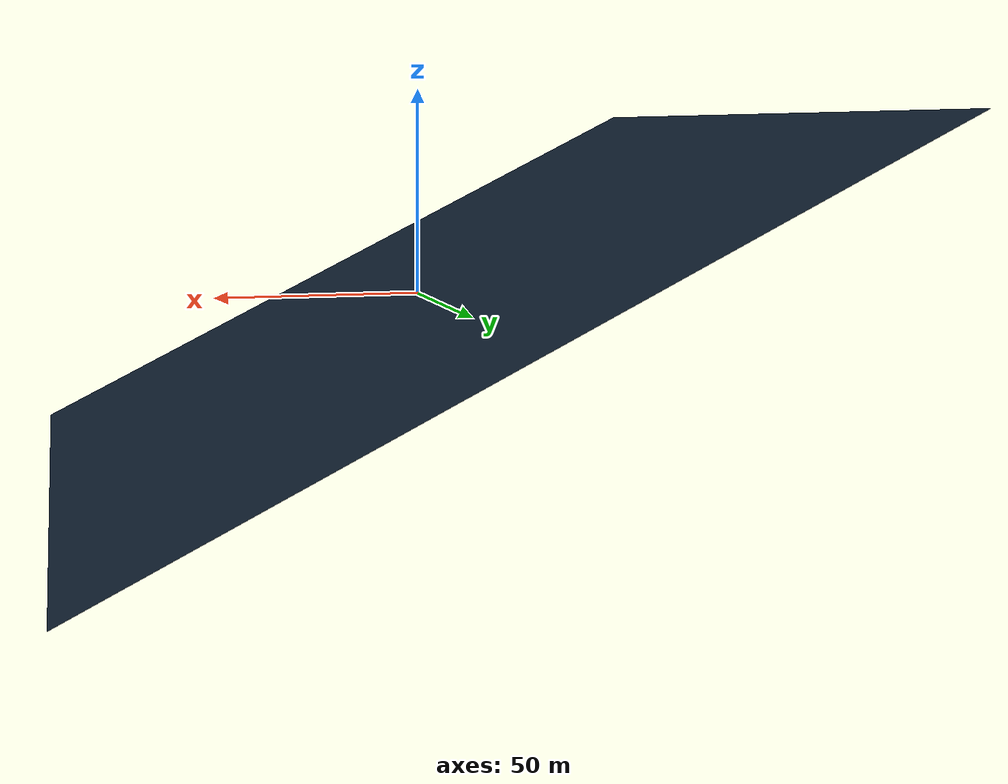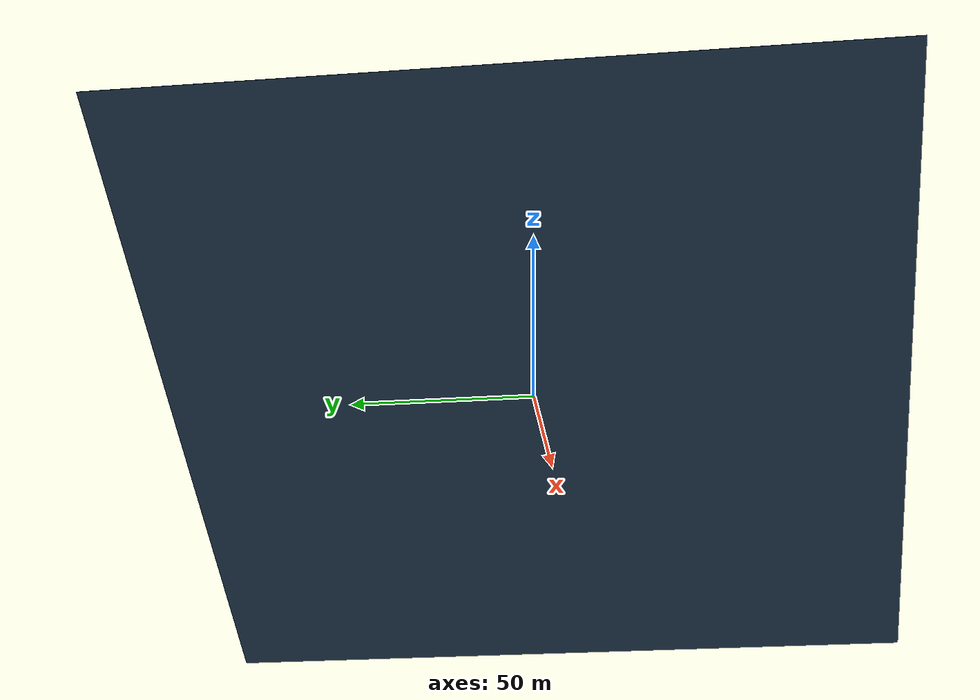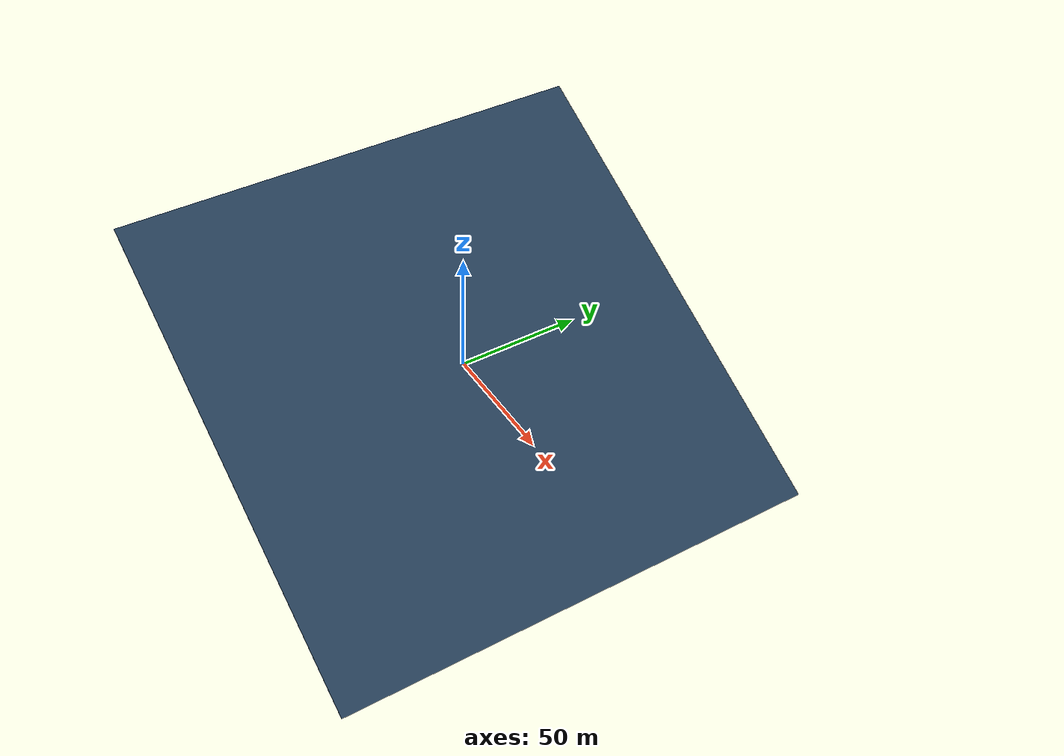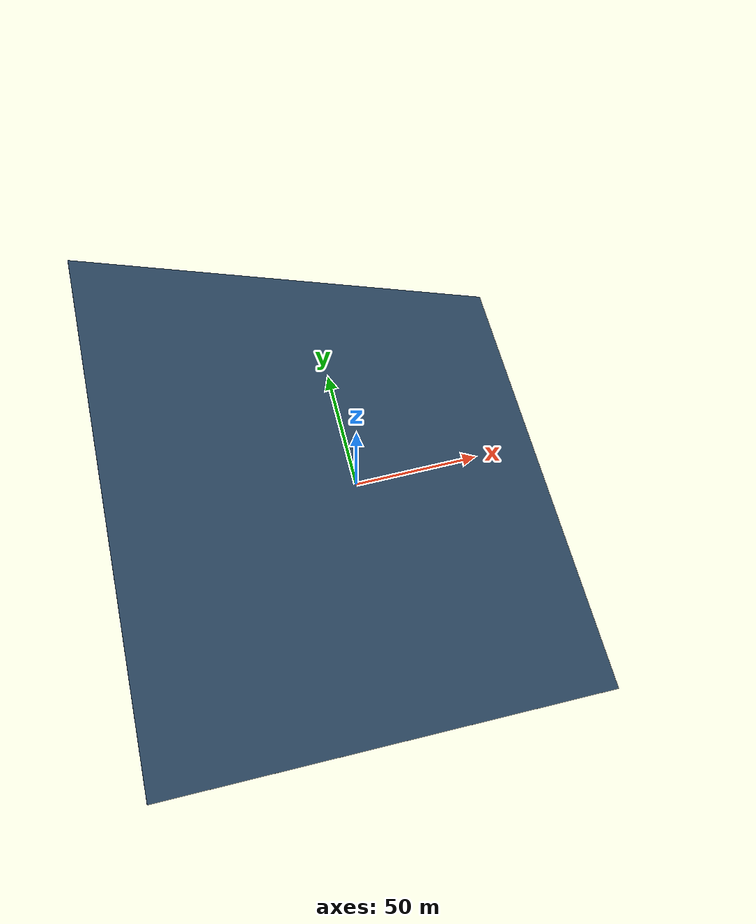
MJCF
<mujoco>
  <asset>
    <texture type="skybox" builtin="gradient" rgb1=".3 .5 .7" rgb2="0 0 0" width="32" height="512"/>
    <texture name="grid" type="2d" builtin="checker" width="512" height="512" rgb1=".1 .2 .3" rgb2=".2 .3 .4"/>
    <material name="grid" texture="grid" texrepeat="1 1" texuniform="true" reflectance=".2"/>
  </asset>

  <statistic extent="1"/>

  <!-- switch the integrator to "implicit" for better gyroscopic stabillity -->
  <option timestep="0.01" integrator="implicitfast"/>

  <worldbody>
    <geom pos="0 0 -.5" type="plane" size="100 100 .1" zaxis=".5 0 1" material="grid"/>
    <body pos="0 0 .3">
      <freejoint/>
      <geom type="ellipsoid" size="0.15 0.1 0.07" euler="20 40 60"/>
      <light pos="0 0 1.5" mode="track"/>
      <camera pos="0 -1.498 0.1" xyaxes="1 0 0 0 0 1" mode="track"/>
    </body>
  </worldbody>
</mujoco>
